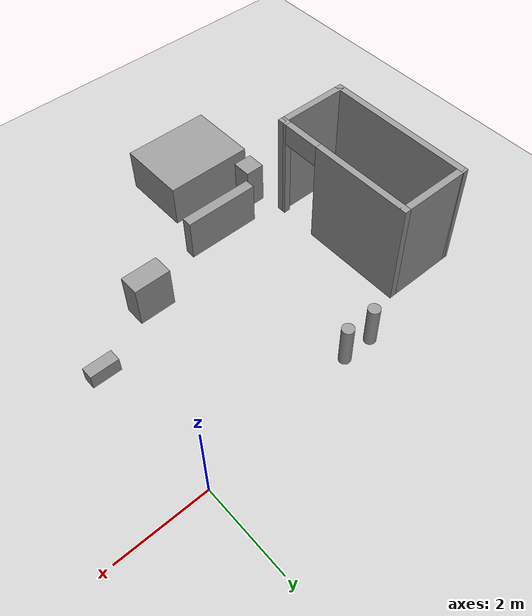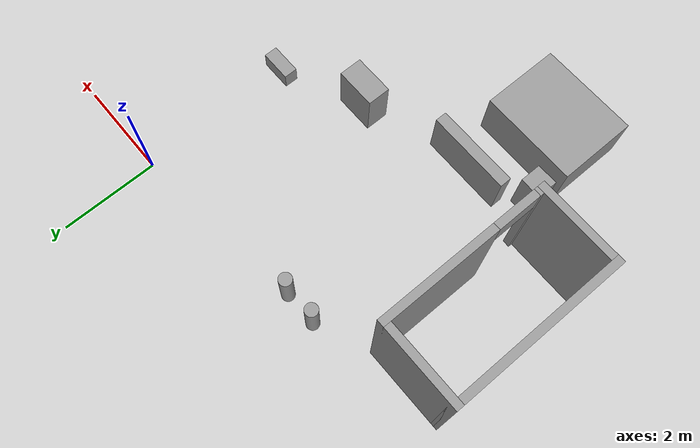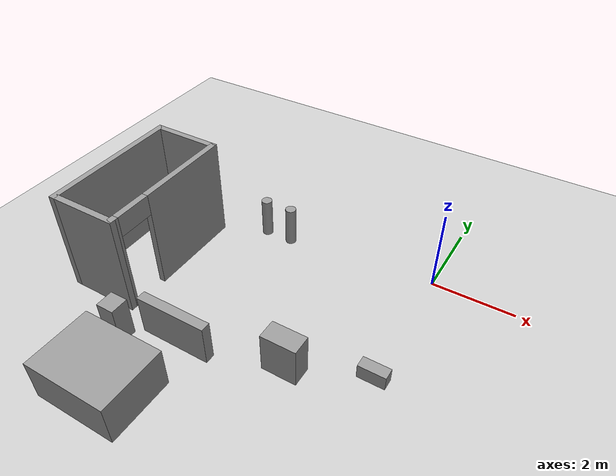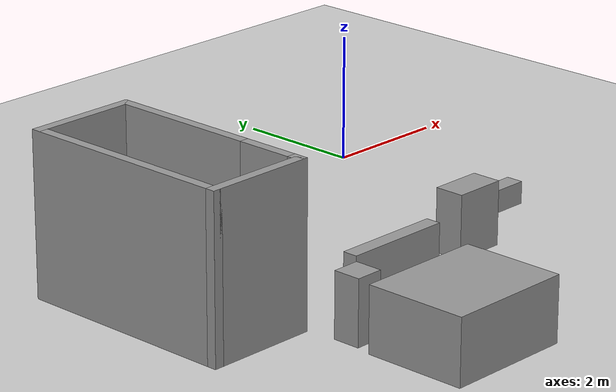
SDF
<sdf version="1.6">
 <world name="default">
  <model name="ground_plane">
   <static>1</static>
   <link name="link">
    <collision name="collision">
     <geometry><plane><normal>0 0 1</normal><size>100 100</size></plane></geometry>
     <surface><friction><ode><mu>100</mu><mu2>50</mu2></ode></friction></surface>
    </collision>
    <visual name="visual">
     <cast_shadows>0</cast_shadows>
     <geometry><plane><normal>0 0 1</normal><size>100 100</size></plane></geometry>
     <material>
      <script><uri>file://media/materials/scripts/gazebo.material</uri><name>Gazebo/Grey</name></script>
     </material>
    </visual>
   </link>
  </model>
  <model name="cma_varanda1">
   <pose>-6.32518 -2.59313 0 0 -0 0</pose>
   <link name="Wall_0">
    <pose>0.8 0 0 0 0 -1.5708</pose>
    <visual name="Wall_0_Visual_0">
     <pose>-0.5525 0 1.25 0 -0 0</pose>
     <geometry><box><size>2.395 0.15 2.5</size></box></geometry>
     <material>
      <script><uri>file://media/materials/scripts/gazebo.material</uri><name>Gazebo/Grey</name></script>
      <ambient>1 1 1 1</ambient>
     </material>
    </visual>
    <collision name="Wall_0_Collision_0">
     <geometry><box><size>2.395 0.15 2.5</size></box></geometry>
     <pose>-0.5525 0 1.25 0 -0 0</pose>
    </collision>
    <visual name="Wall_0_Visual_1">
     <pose>1.6375 0 1.25 0 -0 0</pose>
     <geometry><box><size>0.225 0.15 2.5</size></box></geometry>
     <material>
      <script><uri>file://media/materials/scripts/gazebo.material</uri><name>Gazebo/Grey</name></script>
      <ambient>1 1 1 1</ambient>
     </material>
    </visual>
    <collision name="Wall_0_Collision_1">
     <geometry><box><size>0.225 0.15 2.5</size></box></geometry>
     <pose>1.6375 0 1.25 0 -0 0</pose>
    </collision>
    <visual name="Wall_0_Visual_2">
     <pose>1.085 0 2.25 0 -0 0</pose>
     <geometry><box><size>0.88 0.15 0.5</size></box></geometry>
     <material>
      <script><uri>file://media/materials/scripts/gazebo.material</uri><name>Gazebo/Grey</name></script>
      <ambient>1 1 1 1</ambient>
     </material>
    </visual>
    <collision name="Wall_0_Collision_2">
     <geometry><box><size>0.88 0.15 0.5</size></box></geometry>
     <pose>1.085 0 2.25 0 -0 0</pose>
    </collision>
   </link>
   <link name="Wall_1">
    <collision name="Wall_1_Collision">
     <geometry><box><size>1.75 0.15 2.5</size></box></geometry>
     <pose>0 0 1.25 0 -0 0</pose>
    </collision>
    <visual name="Wall_1_Visual">
     <pose>0 0 1.25 0 -0 0</pose>
     <geometry><box><size>1.75 0.15 2.5</size></box></geometry>
     <material>
      <script><uri>file://media/materials/scripts/gazebo.material</uri><name>Gazebo/Grey</name></script>
      <ambient>1 1 1 1</ambient>
     </material>
    </visual>
    <pose>0 -1.675 0 0 -0 3.14159</pose>
   </link>
   <link name="Wall_2">
    <collision name="Wall_2_Collision">
     <geometry><box><size>3.5 0.15 2.5</size></box></geometry>
     <pose>0 0 1.25 0 -0 0</pose>
    </collision>
    <visual name="Wall_2_Visual">
     <pose>0 0 1.25 0 -0 0</pose>
     <geometry><box><size>3.5 0.15 2.5</size></box></geometry>
     <material>
      <script><uri>file://media/materials/scripts/gazebo.material</uri><name>Gazebo/Grey</name></script>
      <ambient>1 1 1 1</ambient>
     </material>
    </visual>
    <pose>-0.8 0 0 0 -0 1.5708</pose>
   </link>
   <link name="Wall_3">
    <collision name="Wall_3_Collision">
     <geometry><box><size>1.75 0.15 2.5</size></box></geometry>
     <pose>0 0 1.25 0 -0 0</pose>
    </collision>
    <visual name="Wall_3_Visual">
     <pose>0 0 1.25 0 -0 0</pose>
     <geometry><box><size>1.75 0.15 2.5</size></box></geometry>
     <material>
      <script><uri>file://media/materials/scripts/gazebo.material</uri><name>Gazebo/Grey</name></script>
      <ambient>1 1 1 1</ambient>
     </material>
    </visual>
    <pose>0 1.675 0 0 -0 0</pose>
   </link>
   <static>1</static>
  </model>
  <model name="cma_armario_s">
   <link name="link_1">
    <pose>-2e-06 -3e-06 0 0 -0 0</pose>
    <inertial>
     <mass>0.390159</mass>
     <inertia>
      <ixx>0.039647</ixx>
      <ixy>0</ixy>
      <ixz>0</ixz>
      <iyy>0.0550708</iyy>
      <iyz>0</iyz>
      <izz>0.0296912</izz>
     </inertia>
    </inertial>
    <visual name="visual">
     <geometry><box><size>0.832942 0.468397 1</size></box></geometry>
     <material>
      <lighting>1</lighting>
      <script><uri>file://media/materials/scripts/gazebo.material</uri><name>Gazebo/Grey</name></script>
      <ambient>0.3 0.3 0.3 1</ambient>
      <diffuse>0.7 0.7 0.7 1</diffuse>
      <specular>0.01 0.01 0.01 1</specular>
      <emissive>0 0 0 1</emissive>
     </material>
    </visual>
    <collision name="collision">
     <geometry><box><size>0.832942 0.468397 1</size></box></geometry>
     <surface>
      <friction>
       <ode><mu>1</mu><mu2>1</mu2><fdir1>0 0 0</fdir1><slip1>0</slip1><slip2>0</slip2></ode>
       <torsional>
        <coefficient>1</coefficient>
        <patch_radius>0</patch_radius>
        <surface_radius>0</surface_radius>
        <use_patch_radius>1</use_patch_radius>
        <ode><slip>0</slip></ode>
       </torsional>
      </friction>
      <bounce><restitution_coefficient>0</restitution_coefficient><threshold>1e+06</threshold></bounce>
      <contact>
       <collide_without_contact>0</collide_without_contact>
       <collide_without_contact_bitmask>1</collide_without_contact_bitmask>
       <collide_bitmask>1</collide_bitmask>
       <ode>
        <soft_cfm>0</soft_cfm>
        <soft_erp>0.2</soft_erp>
        <kp>1e+13</kp>
        <kd>1</kd>
        <max_vel>0.01</max_vel>
        <min_depth>0</min_depth>
       </ode>
       <bullet>
        <split_impulse>1</split_impulse>
        <split_impulse_penetration_threshold>-0.01</split_impulse_penetration_threshold>
        <soft_cfm>0</soft_cfm>
        <soft_erp>0.2</soft_erp>
        <kp>1e+13</kp>
        <kd>1</kd>
       </bullet>
      </contact>
     </surface>
    </collision>
   </link>
   <static>0</static>
   <pose>-1.63841 -3.93801 0.500001 6e-06 -0 0.000644</pose>
  </model>
  <model name="cma_cama_c">
   <link name="link_0">
    <pose>5e-06 -4e-06 0 0 -0 0</pose>
    <inertial>
     <mass>3.18358</mass>
     <inertia><ixx>0.934862</ixx><ixy>0</ixy><ixz>0</ixz><iyy>1.33069</iyy><iyz>0</iyz><izz>1.73496</izz></inertia>
    </inertial>
    <visual name="visual">
     <geometry><box><size>2.00394 1.58866 1</size></box></geometry>
     <material>
      <lighting>1</lighting>
      <script><uri>file://media/materials/scripts/gazebo.material</uri><name>Gazebo/Grey</name></script>
      <ambient>0.3 0.3 0.3 1</ambient>
      <diffuse>0.7 0.7 0.7 1</diffuse>
      <specular>0.01 0.01 0.01 1</specular>
      <emissive>0 0 0 1</emissive>
     </material>
    </visual>
    <collision name="collision">
     <geometry><box><size>2.00394 1.58866 1</size></box></geometry>
     <surface>
      <friction>
       <ode><mu>1</mu><mu2>1</mu2><fdir1>0 0 0</fdir1><slip1>0</slip1><slip2>0</slip2></ode>
       <torsional>
        <coefficient>1</coefficient>
        <patch_radius>0</patch_radius>
        <surface_radius>0</surface_radius>
        <use_patch_radius>1</use_patch_radius>
        <ode><slip>0</slip></ode>
       </torsional>
      </friction>
      <bounce><restitution_coefficient>0</restitution_coefficient><threshold>1e+06</threshold></bounce>
      <contact>
       <collide_without_contact>0</collide_without_contact>
       <collide_without_contact_bitmask>1</collide_without_contact_bitmask>
       <collide_bitmask>1</collide_bitmask>
       <ode>
        <soft_cfm>0</soft_cfm>
        <soft_erp>0.2</soft_erp>
        <kp>1e+13</kp>
        <kd>1</kd>
        <max_vel>0.01</max_vel>
        <min_depth>0</min_depth>
       </ode>
       <bullet>
        <split_impulse>1</split_impulse>
        <split_impulse_penetration_threshold>-0.01</split_impulse_penetration_threshold>
        <soft_cfm>0</soft_cfm>
        <soft_erp>0.2</soft_erp>
        <kp>1e+13</kp>
        <kd>1</kd>
       </bullet>
      </contact>
     </surface>
    </collision>
   </link>
   <static>0</static>
   <pose>-4.43933 -6.24816 0.5 0 -0 0</pose>
  </model>
  <model name="cma_armario_0">
   <link name="link_0">
    <pose>1.32157 0.885178 0.5 0 -0 0</pose>
    <inertial>
     <mass>0.402376</mass>
     <inertia>
      <ixx>0.0353686</ixx>
      <ixy>0</ixy>
      <ixz>0</ixz>
      <iyy>0.132616</iyy>
      <iyz>0</iyz>
      <izz>0.100922</izz>
     </inertia>
    </inertial>
    <visual name="visual">
     <geometry><box><size>1.71877 0.234069 1</size></box></geometry>
     <material>
      <lighting>1</lighting>
      <script><uri>file://media/materials/scripts/gazebo.material</uri><name>Gazebo/Grey</name></script>
      <ambient>0.3 0.3 0.3 1</ambient>
      <diffuse>0.7 0.7 0.7 1</diffuse>
      <specular>0.01 0.01 0.01 1</specular>
      <emissive>0 0 0 1</emissive>
     </material>
    </visual>
    <collision name="collision">
     <geometry><box><size>1.71877 0.234069 1</size></box></geometry>
     <surface>
      <friction>
       <ode><mu>1</mu><mu2>1</mu2><fdir1>0 0 0</fdir1><slip1>0</slip1><slip2>0</slip2></ode>
       <torsional>
        <coefficient>1</coefficient>
        <patch_radius>0</patch_radius>
        <surface_radius>0</surface_radius>
        <use_patch_radius>1</use_patch_radius>
        <ode><slip>0</slip></ode>
       </torsional>
      </friction>
      <bounce><restitution_coefficient>0</restitution_coefficient><threshold>1e+06</threshold></bounce>
      <contact>
       <collide_without_contact>0</collide_without_contact>
       <collide_without_contact_bitmask>1</collide_without_contact_bitmask>
       <collide_bitmask>1</collide_bitmask>
       <ode>
        <soft_cfm>0</soft_cfm>
        <soft_erp>0.2</soft_erp>
        <kp>1e+13</kp>
        <kd>1</kd>
        <max_vel>0.01</max_vel>
        <min_depth>0</min_depth>
       </ode>
       <bullet>
        <split_impulse>1</split_impulse>
        <split_impulse_penetration_threshold>-0.01</split_impulse_penetration_threshold>
        <soft_cfm>0</soft_cfm>
        <soft_erp>0.2</soft_erp>
        <kp>1e+13</kp>
        <kd>1</kd>
       </bullet>
      </contact>
     </surface>
    </collision>
   </link>
   <static>0</static>
   <pose>-5.27808 -5.41812 0 0 0 -0.00194</pose>
  </model>
  <model name="cma_gaveteiro_pequeno_1">
   <link name="link_0">
    <pose>0.256174 1.25055 0.5 0 -0 0</pose>
    <inertial>
     <mass>0.187186</mass>
     <inertia>
      <ixx>0.01851</ixx>
      <ixy>0</ixy>
      <ixz>0</ixz>
      <iyy>0.0185276</iyy>
      <iyz>0</iyz>
      <izz>0.00583981</izz>
     </inertia>
    </inertial>
    <visual name="visual">
     <geometry><box><size>0.433317 0.432002 1</size></box></geometry>
     <material>
      <lighting>1</lighting>
      <script><uri>file://media/materials/scripts/gazebo.material</uri><name>Gazebo/Grey</name></script>
      <ambient>0.3 0.3 0.3 1</ambient>
      <diffuse>0.7 0.7 0.7 1</diffuse>
      <specular>0.01 0.01 0.01 1</specular>
      <emissive>0 0 0 1</emissive>
     </material>
    </visual>
    <collision name="collision">
     <geometry><box><size>0.433317 0.432002 1</size></box></geometry>
     <surface>
      <friction>
       <ode><mu>1</mu><mu2>1</mu2><fdir1>0 0 0</fdir1><slip1>0</slip1><slip2>0</slip2></ode>
       <torsional>
        <coefficient>1</coefficient>
        <patch_radius>0</patch_radius>
        <surface_radius>0</surface_radius>
        <use_patch_radius>1</use_patch_radius>
        <ode><slip>0</slip></ode>
       </torsional>
      </friction>
      <bounce><restitution_coefficient>0</restitution_coefficient><threshold>1e+06</threshold></bounce>
      <contact>
       <collide_without_contact>0</collide_without_contact>
       <collide_without_contact_bitmask>1</collide_without_contact_bitmask>
       <collide_bitmask>1</collide_bitmask>
       <ode>
        <soft_cfm>0</soft_cfm>
        <soft_erp>0.2</soft_erp>
        <kp>1e+13</kp>
        <kd>1</kd>
        <max_vel>0.01</max_vel>
        <min_depth>0</min_depth>
       </ode>
       <bullet>
        <split_impulse>1</split_impulse>
        <split_impulse_penetration_threshold>-0.01</split_impulse_penetration_threshold>
        <soft_cfm>0</soft_cfm>
        <soft_erp>0.2</soft_erp>
        <kp>1e+13</kp>
        <kd>1</kd>
       </bullet>
      </contact>
     </surface>
    </collision>
   </link>
   <static>0</static>
   <pose>-5.43097 -6.25507 -6e-06 4e-06 3e-06 -2.9e-05</pose>
  </model>
  <model name="cma_lixo_2">
   <link name="link_1">
    <pose>0.882962 1.81586 0.5 0 -0 0</pose>
    <inertial>
     <mass>0.0687644</mass>
     <inertia>
      <ixx>0.00602588</ixx>
      <ixy>0</ixy>
      <ixz>0</ixz>
      <iyy>0.00602588</iyy>
      <iyz>0</iyz>
      <izz>0.000591068</izz>
     </inertia>
    </inertial>
    <visual name="visual">
     <geometry><cylinder><radius>0.131112</radius><length>1</length></cylinder></geometry>
     <material>
      <lighting>1</lighting>
      <script><uri>file://media/materials/scripts/gazebo.material</uri><name>Gazebo/Grey</name></script>
      <ambient>0.3 0.3 0.3 1</ambient>
      <diffuse>0.7 0.7 0.7 1</diffuse>
      <specular>0.01 0.01 0.01 1</specular>
      <emissive>0 0 0 1</emissive>
     </material>
    </visual>
    <collision name="collision">
     <geometry><cylinder><radius>0.131112</radius><length>1</length></cylinder></geometry>
     <surface>
      <friction>
       <ode><mu>1</mu><mu2>1</mu2><fdir1>0 0 0</fdir1><slip1>0</slip1><slip2>0</slip2></ode>
       <torsional>
        <coefficient>1</coefficient>
        <patch_radius>0</patch_radius>
        <surface_radius>0</surface_radius>
        <use_patch_radius>1</use_patch_radius>
        <ode><slip>0</slip></ode>
       </torsional>
      </friction>
      <bounce><restitution_coefficient>0</restitution_coefficient><threshold>1e+06</threshold></bounce>
      <contact>
       <collide_without_contact>0</collide_without_contact>
       <collide_without_contact_bitmask>1</collide_without_contact_bitmask>
       <collide_bitmask>1</collide_bitmask>
       <ode>
        <soft_cfm>0</soft_cfm>
        <soft_erp>0.2</soft_erp>
        <kp>1e+13</kp>
        <kd>1</kd>
        <max_vel>0.01</max_vel>
        <min_depth>0</min_depth>
       </ode>
       <bullet>
        <split_impulse>1</split_impulse>
        <split_impulse_penetration_threshold>-0.01</split_impulse_penetration_threshold>
        <soft_cfm>0</soft_cfm>
        <soft_erp>0.2</soft_erp>
        <kp>1e+13</kp>
        <kd>1</kd>
       </bullet>
      </contact>
     </surface>
    </collision>
   </link>
   <static>0</static>
   <pose>-5.27342 -2.21345 -9e-06 0 -0 0</pose>
  </model>
  <model name="cma_lixo_3">
   <link name="link_1">
    <pose>0.882962 1.81586 0.5 0 -0 0</pose>
    <inertial>
     <mass>0.0687644</mass>
     <inertia>
      <ixx>0.00602588</ixx>
      <ixy>0</ixy>
      <ixz>0</ixz>
      <iyy>0.00602588</iyy>
      <iyz>0</iyz>
      <izz>0.000591068</izz>
     </inertia>
    </inertial>
    <visual name="visual">
     <geometry><cylinder><radius>0.131112</radius><length>1</length></cylinder></geometry>
     <material>
      <lighting>1</lighting>
      <script><uri>file://media/materials/scripts/gazebo.material</uri><name>Gazebo/Grey</name></script>
      <ambient>0.3 0.3 0.3 1</ambient>
      <diffuse>0.7 0.7 0.7 1</diffuse>
      <specular>0.01 0.01 0.01 1</specular>
      <emissive>0 0 0 1</emissive>
     </material>
    </visual>
    <collision name="collision">
     <geometry><cylinder><radius>0.131112</radius><length>1</length></cylinder></geometry>
     <surface>
      <friction>
       <ode><mu>1</mu><mu2>1</mu2><fdir1>0 0 0</fdir1><slip1>0</slip1><slip2>0</slip2></ode>
       <torsional>
        <coefficient>1</coefficient>
        <patch_radius>0</patch_radius>
        <surface_radius>0</surface_radius>
        <use_patch_radius>1</use_patch_radius>
        <ode><slip>0</slip></ode>
       </torsional>
      </friction>
      <bounce><restitution_coefficient>0</restitution_coefficient><threshold>1e+06</threshold></bounce>
      <contact>
       <collide_without_contact>0</collide_without_contact>
       <collide_without_contact_bitmask>1</collide_without_contact_bitmask>
       <collide_bitmask>1</collide_bitmask>
       <ode>
        <soft_cfm>0</soft_cfm>
        <soft_erp>0.2</soft_erp>
        <kp>1e+13</kp>
        <kd>1</kd>
        <max_vel>0.01</max_vel>
        <min_depth>0</min_depth>
       </ode>
       <bullet>
        <split_impulse>1</split_impulse>
        <split_impulse_penetration_threshold>-0.01</split_impulse_penetration_threshold>
        <soft_cfm>0</soft_cfm>
        <soft_erp>0.2</soft_erp>
        <kp>1e+13</kp>
        <kd>1</kd>
       </bullet>
      </contact>
     </surface>
    </collision>
   </link>
   <static>0</static>
   <pose>-4.57495 -2.209 -9e-06 0 -0 0</pose>
  </model>
  <model name="cma_barra_70cm">
   <link name="link_2">
    <pose>3.35384 1.20238 0.5 0 -0 0</pose>
    <inertial>
     <mass>0.0631368</mass>
     <inertia>
      <ixx>0.00106542</ixx>
      <ixy>0</ixy>
      <ixz>0</ixz>
      <iyy>0.00284727</iyy>
      <iyz>0</iyz>
      <izz>0.0025815</izz>
     </inertia>
    </inertial>
    <visual name="visual">
     <geometry><box><size>0.643938 0.275728 0.355737</size></box></geometry>
     <material>
      <lighting>1</lighting>
      <script><uri>file://media/materials/scripts/gazebo.material</uri><name>Gazebo/Grey</name></script>
      <ambient>0.3 0.3 0.3 1</ambient>
      <diffuse>0.7 0.7 0.7 1</diffuse>
      <specular>0.01 0.01 0.01 1</specular>
      <emissive>0 0 0 1</emissive>
     </material>
    </visual>
    <collision name="collision">
     <geometry><box><size>0.643938 0.275728 0.355737</size></box></geometry>
     <surface>
      <friction>
       <ode><mu>1</mu><mu2>1</mu2><fdir1>0 0 0</fdir1><slip1>0</slip1><slip2>0</slip2></ode>
       <torsional>
        <coefficient>1</coefficient>
        <patch_radius>0</patch_radius>
        <surface_radius>0</surface_radius>
        <use_patch_radius>1</use_patch_radius>
        <ode><slip>0</slip></ode>
       </torsional>
      </friction>
      <bounce><restitution_coefficient>0</restitution_coefficient><threshold>1e+06</threshold></bounce>
      <contact>
       <collide_without_contact>0</collide_without_contact>
       <collide_without_contact_bitmask>1</collide_without_contact_bitmask>
       <collide_bitmask>1</collide_bitmask>
       <ode>
        <soft_cfm>0</soft_cfm>
        <soft_erp>0.2</soft_erp>
        <kp>1e+13</kp>
        <kd>1</kd>
        <max_vel>0.01</max_vel>
        <min_depth>0</min_depth>
       </ode>
       <bullet>
        <split_impulse>1</split_impulse>
        <split_impulse_penetration_threshold>-0.01</split_impulse_penetration_threshold>
        <soft_cfm>0</soft_cfm>
        <soft_erp>0.2</soft_erp>
        <kp>1e+13</kp>
        <kd>1</kd>
       </bullet>
      </contact>
     </surface>
    </collision>
   </link>
   <static>0</static>
   <pose>-3.32482 -4.40395 -0.322102 -2.7e-05 -0 -0.000413</pose>
  </model>
 </world>
</sdf>
